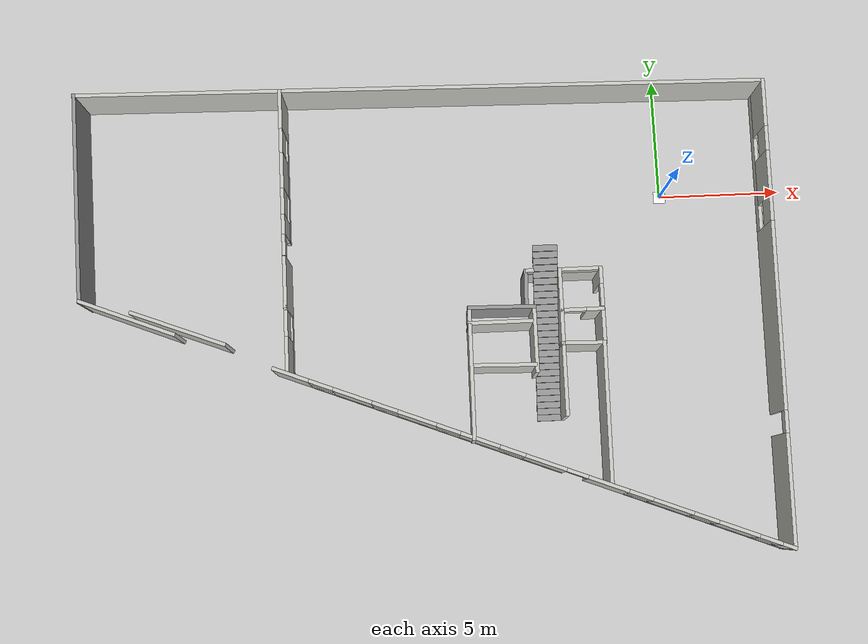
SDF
<?xml version="1.0" ?>
<sdf version="1.4">
  <world name="vrc_task_1">
    <!-- place user camera -->
    <gui>
      <camera name="user_camera">
        <pose>-21.660200 -11.942800 12.053900 0.000000 0.443643 0.352194</pose>
      </camera>
    </gui>
    <scene>
      <ambient>0.5 0.5 0.5 1.0</ambient>
      <grid>true</grid>
      <sky>
        <clouds>
          <speed>4</speed>
        </clouds>
      </sky>
    </scene>
    <physics type="ode">
      <gravity>0 0 -9.81</gravity>
      <ode>
        <solver>
          <use_dynamic_moi_rescaling>true</use_dynamic_moi_rescaling>
          <type>quick</type>
          <iters>50</iters>
	  <!-- Must be 1.0 ! Not any above number -->
          <sor>1.0</sor>
        </solver>
        <constraints>
          <cfm>0.0</cfm>
          <erp>0.2</erp>
          <contact_max_correcting_vel>100.0</contact_max_correcting_vel>
          <contact_surface_layer>0.0</contact_surface_layer>
        </constraints>
      </ode>
      <real_time_update_rate>1000</real_time_update_rate>
      <max_step_size>0.001</max_step_size>
    </physics>

    <!-- Light Source -->
    <light type="directional" name="sun">
      <cast_shadows>false</cast_shadows>
      <pose>0 0 100 0 0 0</pose>
      <diffuse>0.8 0.8 0.8 1</diffuse>
      <specular>0.9 0.9 0.9 1</specular>
      <attenuation>
        <range>1000</range>
        <constant>0.9</constant>
        <linear>0.01</linear>
        <quadratic>0.001</quadratic>
      </attenuation>
      <!-- Vertical direction, for easier position debug -->
      <direction>0 0 -1</direction>
    </light>

    <include>
      <uri>model://ground_plane</uri>
    </include>

    <include>
      <uri>model://erle</uri>
      <pose>-10 -5 0 0 0 0</pose>
    </include>

    <include>
      <uri>model://aruco0</uri>
    </include>

    <!-- TODO: TRANSFORM IT INTO A VARIABLE DEFINED IN THE .launch FILE
         OR ELSE WE WILL ALWAYS FORGET IT IS HERE !!! -->

    <plugin name="ardupilot_sitl_gazebo_rover_plugin" filename="libardupilot_sitl_gazebo_rover_plugin.so">
    <UAV_MODEL>erlecopter</UAV_MODEL>
    </plugin>
  </world>
</sdf>

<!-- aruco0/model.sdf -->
<sdf version='1.9'>
  <model name='aruco0'>
    <static>true</static>
    <pose>0 0 0.001 0 0 0</pose>
    <link name='base'>
      <visual name='base_visual'>
        <geometry>
          <plane>
            <normal>0 0 1</normal>
            <size>0.5 0.5</size>
          </plane>
        </geometry>
        <material>
          <diffuse>1 1 1 1</diffuse>
          <specular>0.4 0.4 0.4 1</specular>
          <pbr>
            <metal>
              <albedo_map>model://aruco0/materials/textures/aruco0.png</albedo_map>
            </metal>
          </pbr>
        </material>
      </visual>
    </link>
  </model>
</sdf>
